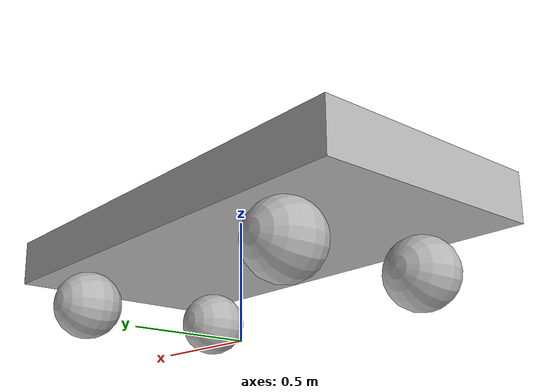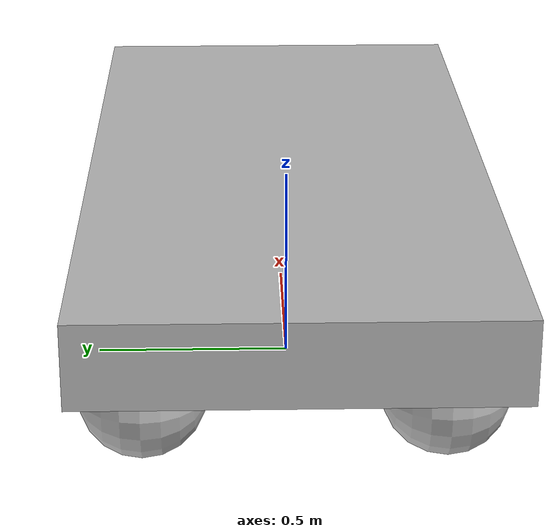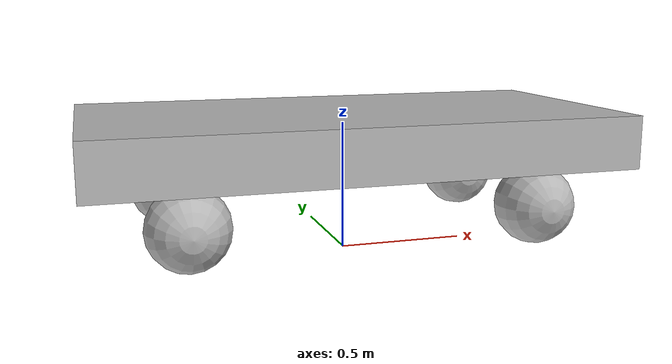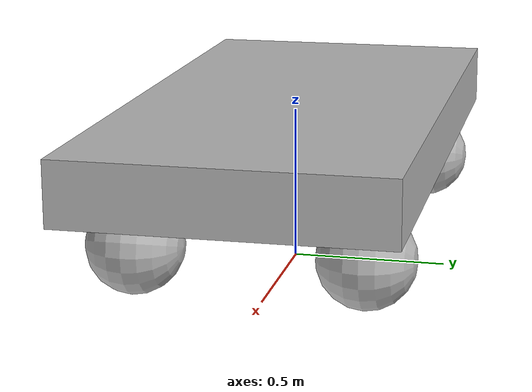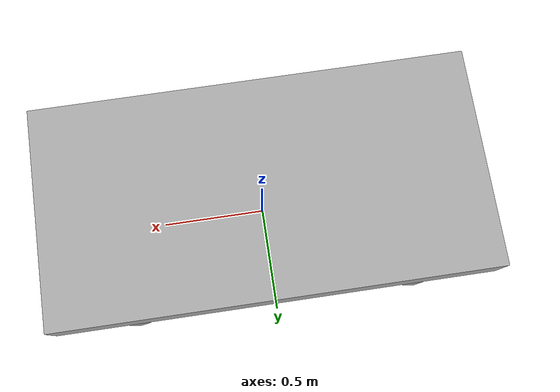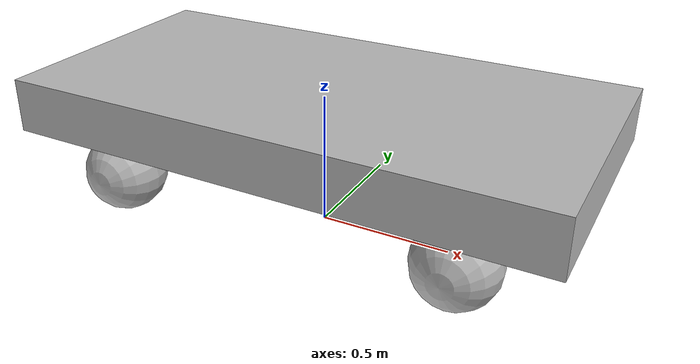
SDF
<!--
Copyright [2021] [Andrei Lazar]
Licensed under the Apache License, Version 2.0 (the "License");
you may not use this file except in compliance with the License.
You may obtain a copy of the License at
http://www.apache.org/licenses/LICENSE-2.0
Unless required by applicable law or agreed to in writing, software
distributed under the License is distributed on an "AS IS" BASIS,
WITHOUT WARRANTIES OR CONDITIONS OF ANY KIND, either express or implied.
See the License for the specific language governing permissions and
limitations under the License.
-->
<?xml version='1.0'?>
<sdf version='1.4'>
  <model name="basic_rover">
  	<static>false</static>

  	<!-- Define the link for the 'body' of the rover -->
  	<link name='chassis'>
  		<pose>0 0 0.45 0 0 0 </pose>
  		<collision name='collision_component'>
  			<geometry>
  				<box>
  					<size>2 1 0.2</size>
  				</box>
  			</geometry>
  		</collision>

  		<visual name='visual_component'>
  			<geometry>
  				<box>
  					<size>2 1 0.2</size>
  				</box>
  			</geometry>
  		</visual>

      <inertial>
          <mass>10.0</mass>
          <inertia>
            <ixx>0.86666</ixx>
            <ixy>0</ixy>
            <ixz>0</ixz>
            <iyy>3.36666</iyy>
            <iyz>0</iyz>
            <izz>4.16666</izz>
          </inertia>
        </inertial>

  	</link>

  	<!-- Define the links for the front wheels -->s
  	  <link name="left_front_wheel">
        <pose>0.65 0.35 0.21 0 1.5707 1.5707</pose>
        <collision name="collision">
          <geometry>
            <sphere>
              <radius>0.15</radius>
            </sphere>
          </geometry>

          <surface>
            <friction>
              <ode>
                <mu>1</mu>
                <mu2>1</mu2>
              </ode>
          </friction>
          </surface>
        </collision>
        <visual name="visual">
          <geometry>
            <sphere>
              <radius>0.15</radius>
            </sphere>
          </geometry>
        </visual>

        <inertial>
          <mass>1</mass>
          <inertia>
            <ixx>0.009</ixx>
            <ixy>0</ixy>
            <ixz>0</ixz>
            <iyy>0.009</iyy>
            <iyz>0</iyz>
            <izz>0.009</izz>
          </inertia>
        </inertial>
        <velocity_decay>
          <angular>0.001</angular>
        </velocity_decay>

      </link>

       <link name="right_front_wheel">
        <pose>0.65 -0.35 0.21 0 1.5707 1.5707</pose>
        <collision name="collision">
          <geometry>
            <sphere>
              <radius>0.15</radius>
            </sphere>
          </geometry>
          <surface>
            <friction>
              <ode>
                <mu>1</mu>
                <mu2>1</mu2>
              </ode>
          </friction>
          </surface>
        </collision>
        <visual name="visual">
          <geometry>
            <sphere>
              <radius>0.15</radius>
            </sphere>
          </geometry>
        </visual>

        <inertial>
          <mass>1</mass>
          <inertia>
            <ixx>0.009</ixx>
            <ixy>0</ixy>
            <ixz>0</ixz>
            <iyy>0.009</iyy>
            <iyz>0</iyz>
            <izz>0.009</izz>
          </inertia>
        </inertial>

         <velocity_decay>
          <angular>0.001</angular>
        </velocity_decay>
      </link>

 <!-- Define the links for the back wheels -->
 	<link name="left_back_wheel">
        <pose>-0.65 0.35 0.21 0 1.5707 1.5707</pose>
        <collision name="collision">
          <geometry>
            <sphere>
              <radius>0.15</radius>
            </sphere>
          </geometry>
          <surface>
            <friction>
              <ode>
                <mu>1</mu>
                <mu2>1</mu2>
              </ode>
          </friction>
          </surface>
        </collision>
        <visual name="visual">
          <geometry>
            <sphere>
              <radius>0.15</radius>
            </sphere>
          </geometry>
        </visual>

        <inertial>
          <mass>1</mass>
          <inertia>
            <ixx>0.009</ixx>
            <ixy>0</ixy>
            <ixz>0</ixz>
            <iyy>0.009</iyy>
            <iyz>0</iyz>
            <izz>0.009</izz>
          </inertia>
        </inertial>

         <velocity_decay>
          <angular>0.001</angular>
        </velocity_decay>
      </link>

       <link name="right_back_wheel">
        <pose>-0.65 -0.35 0.21 0 1.5707 1.5707</pose>
        <collision name="collision">
          <geometry>
            <sphere>
              <radius>0.15</radius>
            </sphere>
          </geometry>
          <surface>
            <friction>
              <ode>
                <mu>1</mu>
                <mu2>1</mu2>
              </ode>
          </friction>
          </surface>
        </collision>
        <visual name="visual">
          <geometry>
            <sphere>
              <radius>0.15</radius>
            </sphere>
          </geometry>
        </visual>

        <inertial>
          <mass>1</mass>
          <inertia>
            <ixx>0.009</ixx>
            <ixy>0</ixy>
            <ixz>0</ixz>
            <iyy>0.009</iyy>
            <iyz>0</iyz>
            <izz>0.009</izz>
          </inertia>
        </inertial>

         <velocity_decay>
          <angular>0.001</angular>
        </velocity_decay>
      </link>

    <!-- Define the joints for the front wheels -->
    <joint type="revolute" name="left_front_wheel_hinge">
        <pose>0 0 -0.03 0 0 0</pose>
        <child>left_front_wheel</child>
        <parent>chassis</parent>
        <axis>
          <xyz>0 1 0</xyz>
        </axis>
  	</joint>

 	<joint type="revolute" name="right_front_wheel_hinge">
		<pose>0 0 0.03 0 0 0</pose>
		<child>right_front_wheel</child>
		<parent>chassis</parent>
		<axis>
		  <xyz>0 1 0</xyz>
		</axis>
    </joint>

     <!-- Define the joints for the back wheels -->
    <joint type="revolute" name="left_back_wheel_hinge">
        <pose>0 0 -0.03 0 0 0</pose>
        <child>left_back_wheel</child>
        <parent>chassis</parent>
        <axis>
          <xyz>0 1 0</xyz>
        </axis>
  	</joint>

 	<joint type="revolute" name="right_back_wheel_hinge">
		<pose>0 0 0.03 0 0 0</pose>
		<child>right_back_wheel</child>
		<parent>chassis</parent>
		<axis>
		  <xyz>0 1 0</xyz>
		</axis>
    </joint>
  </model>
</sdf>
